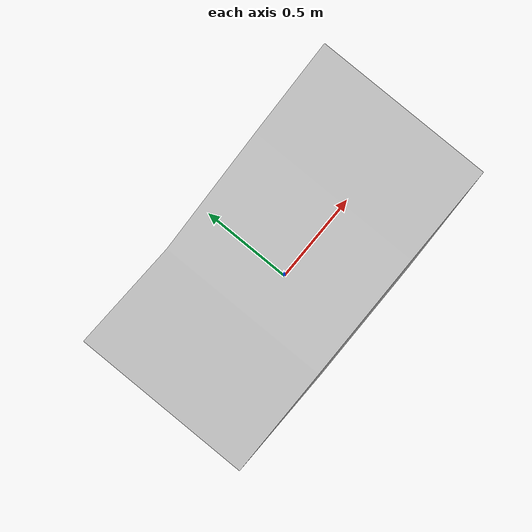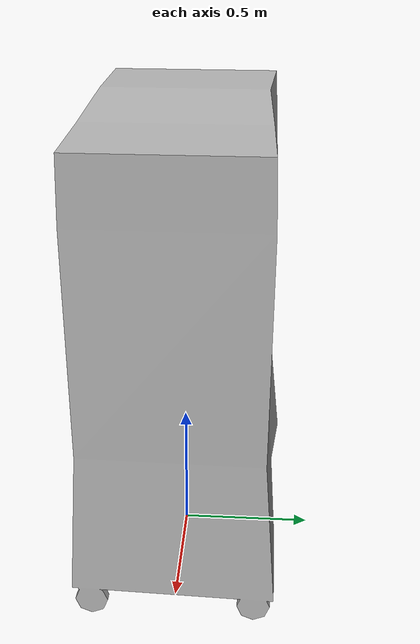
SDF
<?xml version="1.0" ?>
<sdf version="1.5">
  <model name="StorageRackCovered">
    <link name="link">
      <pose>0 0 0 0 0 0</pose>

        <visual name="visual">
          <geometry>
            <mesh><uri>model://StorageRackCovered/meshes/StorageRackCovered.obj</uri></mesh>
          </geometry>
        </visual>

        <collision name="collision">
          <geometry>
            <mesh><uri>model://StorageRackCovered/meshes/StorageRackCovered.obj</uri></mesh>
          </geometry>
        </collision>

    </link>
  </model>
</sdf>
